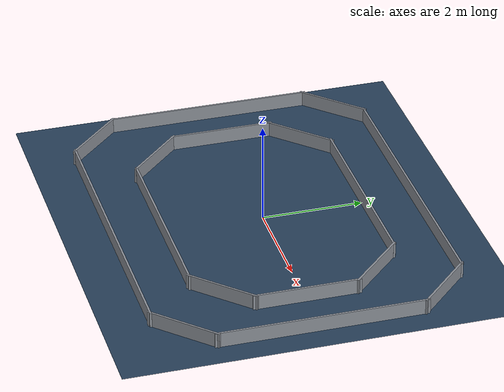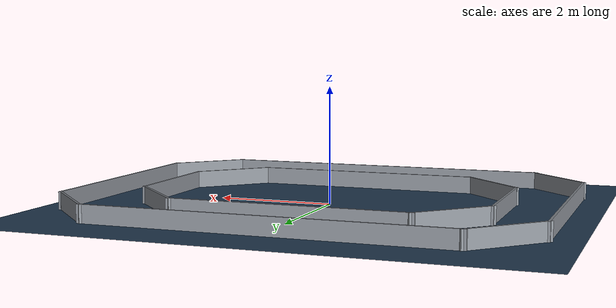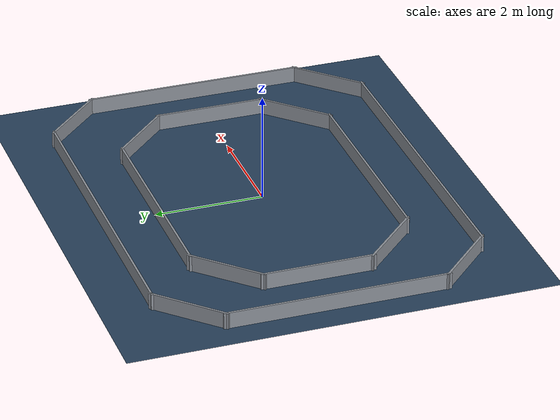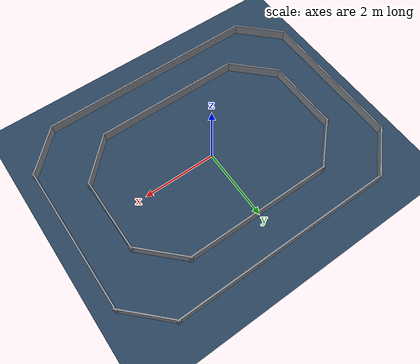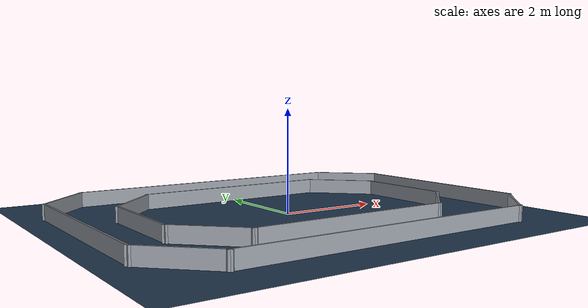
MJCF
<mujoco model="loop_corridor">

    <asset>
        <texture name="loop_grid" type="2d" builtin="checker" width="512" height="512"
                 rgb1=".1 .2 .3" rgb2=".2 .3 .4"/>
        <material name="loop_floor" texture="loop_grid" texrepeat="4 4" texuniform="true"
                  reflectance=".2"/>
        <material name="wall" rgba=".55 .57 .60 1"/>
    </asset>

    <default>
        <default class="scenery">
            <geom type="box" material="wall" condim="3" friction="1.0 0.1 0.1"/>
        </default>
    </default>

    <worldbody>
        <geom name="floor" type="plane" size="4.5 3.9 .01" pos="0 0 0"
              material="loop_floor" friction="1.5 0.1 0.1"/>

        <geom class="scenery" name="outer_top"    pos="0  3 .15" size="3.05 .02 .15"/>
        <geom class="scenery" name="outer_bottom" pos="0 -3 .15" size="3.05 .02 .15"/>
        <geom class="scenery" name="outer_left"   pos="-4 0 .15" size=".02 2.05 .15"/>
        <geom class="scenery" name="outer_right"  pos=" 4 0 .15" size=".02 2.05 .15"/>

        <geom class="scenery" name="outer_chamfer_tr" pos=" 3.5  2.5 .15" size=".757 .02 .15" euler="0 0 -45"/>
        <geom class="scenery" name="outer_chamfer_tl" pos="-3.5  2.5 .15" size=".757 .02 .15" euler="0 0  45"/>
        <geom class="scenery" name="outer_chamfer_br" pos=" 3.5 -2.5 .15" size=".757 .02 .15" euler="0 0  45"/>
        <geom class="scenery" name="outer_chamfer_bl" pos="-3.5 -2.5 .15" size=".757 .02 .15" euler="0 0 -45"/>

        <!-- inner ring (6m x 4m outer footprint of the inner wall): same
             1.0m-short-plus-overlap construction, chamfering the corners
             that would otherwise poke into the turn. -->
        <geom class="scenery" name="inner_top"    pos="0  2 .15" size="2.05 .02 .15"/>
        <geom class="scenery" name="inner_bottom" pos="0 -2 .15" size="2.05 .02 .15"/>
        <geom class="scenery" name="inner_left"   pos="-3 0 .15" size=".02 1.05 .15"/>
        <geom class="scenery" name="inner_right"  pos=" 3 0 .15" size=".02 1.05 .15"/>

        <geom class="scenery" name="inner_chamfer_tr" pos=" 2.5  1.5 .15" size=".757 .02 .15" euler="0 0 -45"/>
        <geom class="scenery" name="inner_chamfer_tl" pos="-2.5  1.5 .15" size=".757 .02 .15" euler="0 0  45"/>
        <geom class="scenery" name="inner_chamfer_br" pos=" 2.5 -1.5 .15" size=".757 .02 .15" euler="0 0  45"/>
        <geom class="scenery" name="inner_chamfer_bl" pos="-2.5 -1.5 .15" size=".757 .02 .15" euler="0 0 -45"/>
    </worldbody>
</mujoco>
